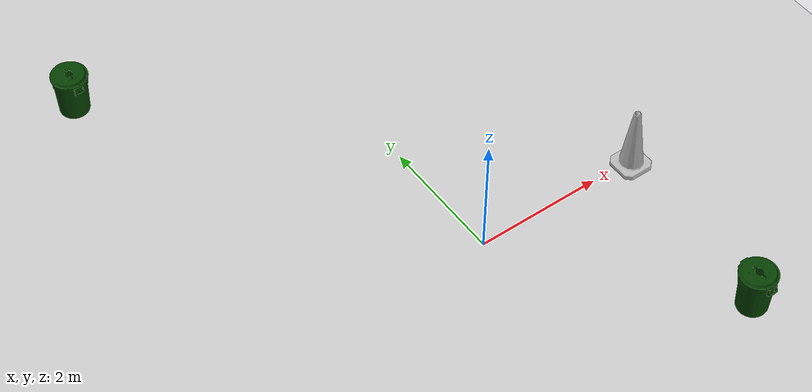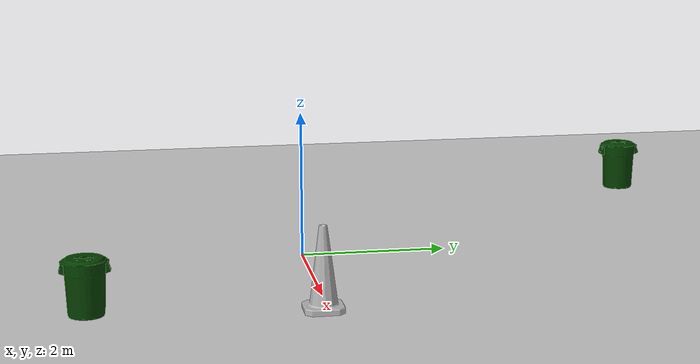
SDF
<sdf version="1.7">
 <world name="default">
  <light name="sun" type="directional">
   <pose>0 0 10 0 -0 0</pose>
   <diffuse>0.8 0.8 0.8 1</diffuse>
   <specular>0.2 0.2 0.2 1</specular>
   <attenuation>
    <range>1000</range>
    <constant>0.9</constant>
    <linear>0.01</linear>
    <quadratic>0.001</quadratic>
   </attenuation>
   <direction>-0.5 0.1 -0.9</direction>
   <spot><inner_angle>0</inner_angle><outer_angle>0</outer_angle><falloff>0</falloff></spot>
  </light>
  <model name="ground_plane">
   <static>1</static>
   <link name="link">
    <collision name="collision">
     <geometry><plane><normal>0 0 1</normal><size>100 100</size></plane></geometry>
     <surface>
      <contact><collide_bitmask>65535</collide_bitmask></contact>
      <friction><ode><mu>100</mu><mu2>50</mu2></ode></friction>
     </surface>
    </collision>
    <visual name="visual">
     <cast_shadows>0</cast_shadows>
     <geometry><plane><normal>0 0 1</normal><size>100 100</size></plane></geometry>
     <material>
      <script><uri>file://media/materials/scripts/gazebo.material</uri><name>Gazebo/Grey</name></script>
     </material>
    </visual>
   </link>
  </model>
  <gravity>0 0 -9.8</gravity>
  <magnetic_field>6e-06 2.3e-05 -4.2e-05</magnetic_field>
  <atmosphere type="adiabatic"/>
  <physics type="ode">
   <max_step_size>0.001</max_step_size>
   <real_time_factor>1</real_time_factor>
   <real_time_update_rate>1000</real_time_update_rate>
  </physics>
  <scene><ambient>0.4 0.4 0.4 1</ambient><background>0.7 0.7 0.7 1</background><shadows>1</shadows></scene>
  <audio><device>default</device></audio>
  <spherical_coordinates>
   <surface_model>EARTH_WGS84</surface_model>
   <latitude_deg>0</latitude_deg>
   <longitude_deg>0</longitude_deg>
   <elevation>0</elevation>
   <heading_deg>0</heading_deg>
  </spherical_coordinates>
  <model name="Construction Cone">
   <link name="link">
    <collision name="collision">
     <geometry>
      <mesh><scale>10 10 10</scale><uri>model://construction_cone/meshes/construction_cone.dae</uri></mesh>
     </geometry>
    </collision>
    <visual name="visual">
     <geometry>
      <mesh><scale>10 10 10</scale><uri>model://construction_cone/meshes/construction_cone.dae</uri></mesh>
     </geometry>
    </visual>
    <inertial>
     <inertia><ixx>1</ixx><ixy>0</ixy><ixz>0</ixz><iyy>1</iyy><iyz>0</iyz><izz>1</izz></inertia>
     <mass>1</mass>
    </inertial>
   </link>
   <pose>2.63139 -0.068151 -0 0 -1e-06 0</pose>
  </model>
  <model name="first_2015_trash_can">
   <link name="link">
    <inertial>
     <pose>0 0 0.3683 0 -0 0</pose>
     <mass>4.83076</mass>
     <inertia>
      <ixx>0.281534</ixx>
      <ixy>0</ixy>
      <ixz>0</ixz>
      <iyy>0.281534</iyy>
      <iyz>0</iyz>
      <izz>0.126223</izz>
     </inertia>
    </inertial>
    <visual name="visual">
     <geometry><mesh><uri>model://first_2015_trash_can/meshes/trash_can.dae</uri></mesh></geometry>
    </visual>
    <collision name="collision">
     <geometry><mesh><uri>model://first_2015_trash_can/meshes/trash_can.dae</uri></mesh></geometry>
    </collision>
   </link>
   <pose>2.32123 -2.9635 -5e-06 -5e-06 -4e-06 -0.000269</pose>
  </model>
  <model name="first_2015_trash_can_0">
   <link name="link">
    <inertial>
     <pose>0 0 0.3683 0 -0 0</pose>
     <mass>4.83076</mass>
     <inertia>
      <ixx>0.281534</ixx>
      <ixy>0</ixy>
      <ixz>0</ixz>
      <iyy>0.281534</iyy>
      <iyz>0</iyz>
      <izz>0.126223</izz>
     </inertia>
    </inertial>
    <visual name="visual">
     <geometry><mesh><uri>model://first_2015_trash_can/meshes/trash_can.dae</uri></mesh></geometry>
    </visual>
    <collision name="collision">
     <geometry><mesh><uri>model://first_2015_trash_can/meshes/trash_can.dae</uri></mesh></geometry>
    </collision>
   </link>
   <pose>-3.35398 5.61974 -1e-05 -3e-05 7e-06 -5.7e-05</pose>
  </model>
 </world>
</sdf>
